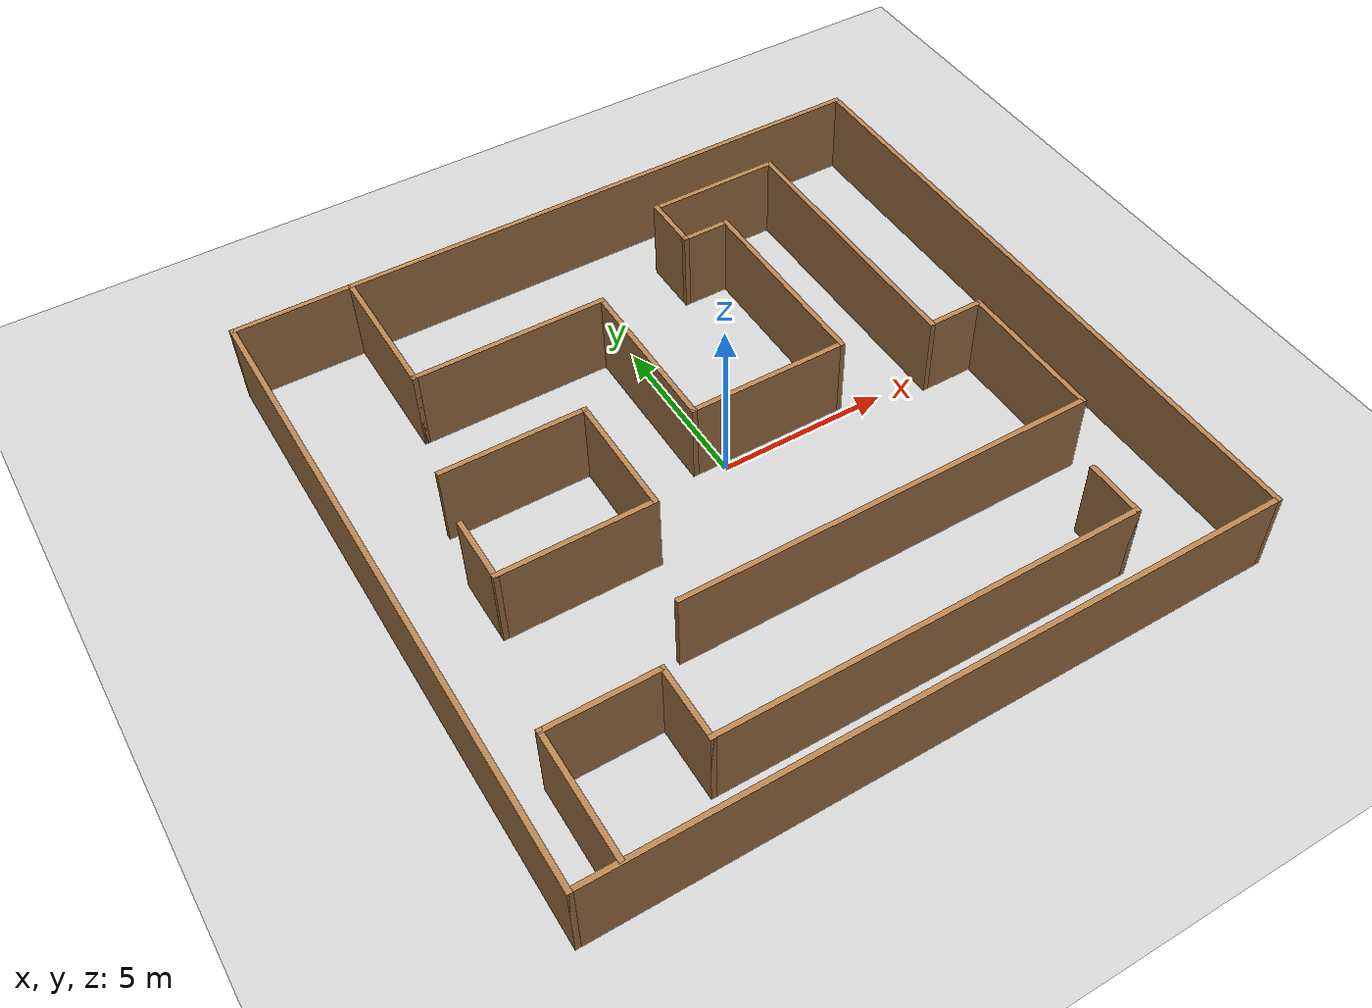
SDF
<?xml version="1.0" ?>
<sdf version="1.4">
  <!-- We use a custom world for the rrbot so that the camera angle is launched correctly -->

  <world name="default">
    <include>
	    <uri>/home/juan/watchdog_ws/src/simulation_watchdog/worlds/JD_World</uri>
    </include>

    <include>
      <uri>model://ground_plane</uri>
    </include>

    <!-- Global light source -->
    <include>
      <uri>model://sun</uri>
    </include>

    <!-- Focus camera on tall pendulum -->
    <gui fullscreen='0'>
      <camera name='user_camera'>
        <pose>4.927360 -4.376610 3.740080 0.000000 0.275643 2.356190</pose>
        <view_controller>orbit</view_controller>
      </camera>
    </gui>

  </world>
</sdf>

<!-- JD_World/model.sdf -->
<sdf version='1.6'>
  <model name='JD_World'>
    <pose frame=''>-0.011673 -0.268225 0 0 -0 0</pose>
    <link name='Wall_18'>
      <collision name='Wall_18_Collision'>
        <geometry>
          <box>
            <size>19.75 0.15 2.5</size>
          </box>
        </geometry>
        <pose frame=''>0 0 1.25 0 -0 0</pose>
      </collision>
      <visual name='Wall_18_Visual'>
        <pose frame=''>0 0 1.25 0 -0 0</pose>
        <geometry>
          <box>
            <size>19.75 0.15 2.5</size>
          </box>
        </geometry>
        <material>
          <script>
            <uri>file://media/materials/scripts/gazebo.material</uri>
            <name>Gazebo/Wood</name>
          </script>
          <ambient>1 1 1 1</ambient>
        </material>
        <meta>
          <layer>0</layer>
        </meta>
      </visual>
      <pose frame=''>0 9.55 0 0 -0 3.14159</pose>
    </link>
    <link name='Wall_19'>
      <collision name='Wall_19_Collision'>
        <geometry>
          <box>
            <size>19.25 0.15 2.5</size>
          </box>
        </geometry>
        <pose frame=''>0 0 1.25 0 -0 0</pose>
      </collision>
      <visual name='Wall_19_Visual'>
        <pose frame=''>0 0 1.25 0 -0 0</pose>
        <geometry>
          <box>
            <size>19.25 0.15 2.5</size>
          </box>
        </geometry>
        <material>
          <script>
            <uri>file://media/materials/scripts/gazebo.material</uri>
            <name>Gazebo/Wood</name>
          </script>
          <ambient>1 1 1 1</ambient>
        </material>
        <meta>
          <layer>0</layer>
        </meta>
      </visual>
      <pose frame=''>-9.8 -0 0 0 -0 -1.5708</pose>
    </link>
    <link name='Wall_20'>
      <collision name='Wall_20_Collision'>
        <geometry>
          <box>
            <size>19.75 0.15 2.5</size>
          </box>
        </geometry>
        <pose frame=''>0 0 1.25 0 -0 0</pose>
      </collision>
      <visual name='Wall_20_Visual'>
        <pose frame=''>0 0 1.25 0 -0 0</pose>
        <geometry>
          <box>
            <size>19.75 0.15 2.5</size>
          </box>
        </geometry>
        <material>
          <script>
            <uri>file://media/materials/scripts/gazebo.material</uri>
            <name>Gazebo/Wood</name>
          </script>
          <ambient>1 1 1 1</ambient>
        </material>
        <meta>
          <layer>0</layer>
        </meta>
      </visual>
      <pose frame=''>0 -9.55 0 0 -0 0</pose>
    </link>
    <link name='Wall_21'>
      <collision name='Wall_21_Collision'>
        <geometry>
          <box>
            <size>19.25 0.15 2.5</size>
          </box>
        </geometry>
        <pose frame=''>0 0 1.25 0 -0 0</pose>
      </collision>
      <visual name='Wall_21_Visual'>
        <pose frame=''>0 0 1.25 0 -0 0</pose>
        <geometry>
          <box>
            <size>19.25 0.15 2.5</size>
          </box>
        </geometry>
        <material>
          <script>
            <uri>file://media/materials/scripts/gazebo.material</uri>
            <name>Gazebo/Wood</name>
          </script>
          <ambient>1 1 1 1</ambient>
        </material>
        <meta>
          <layer>0</layer>
        </meta>
      </visual>
      <pose frame=''>9.8 -0 0 0 -0 1.5708</pose>
    </link>
    <link name='Wall_24'>
      <collision name='Wall_24_Collision'>
        <geometry>
          <box>
            <size>4.25 0.15 2.5</size>
          </box>
        </geometry>
        <pose frame=''>0 0 1.25 0 -0 0</pose>
      </collision>
      <visual name='Wall_24_Visual'>
        <pose frame=''>0 0 1.25 0 -0 0</pose>
        <geometry>
          <box>
            <size>4.25 0.15 2.5</size>
          </box>
        </geometry>
        <material>
          <script>
            <uri>file://media/materials/scripts/gazebo.material</uri>
            <name>Gazebo/Wood</name>
          </script>
          <ambient>1 1 1 1</ambient>
        </material>
        <meta>
          <layer>0</layer>
        </meta>
      </visual>
      <pose frame=''>-6.39008 7.44882 0 0 -0 -1.5708</pose>
    </link>
    <link name='Wall_25'>
      <collision name='Wall_25_Collision'>
        <geometry>
          <box>
            <size>5.75 0.15 2.5</size>
          </box>
        </geometry>
        <pose frame=''>0 0 1.25 0 -0 0</pose>
      </collision>
      <visual name='Wall_25_Visual'>
        <pose frame=''>0 0 1.25 0 -0 0</pose>
        <geometry>
          <box>
            <size>5.75 0.15 2.5</size>
          </box>
        </geometry>
        <material>
          <script>
            <uri>file://media/materials/scripts/gazebo.material</uri>
            <name>Gazebo/Wood</name>
          </script>
          <ambient>1 1 1 1</ambient>
        </material>
        <meta>
          <layer>0</layer>
        </meta>
      </visual>
      <pose frame=''>-3.59008 5.39882 0 0 -0 0</pose>
    </link>
    <link name='Wall_26'>
      <collision name='Wall_26_Collision'>
        <geometry>
          <box>
            <size>5 0.15 2.5</size>
          </box>
        </geometry>
        <pose frame=''>0 0 1.25 0 -0 0</pose>
      </collision>
      <visual name='Wall_26_Visual'>
        <pose frame=''>0 0 1.25 0 -0 0</pose>
        <geometry>
          <box>
            <size>5 0.15 2.5</size>
          </box>
        </geometry>
        <material>
          <script>
            <uri>file://media/materials/scripts/gazebo.material</uri>
            <name>Gazebo/Wood</name>
          </script>
          <ambient>1 1 1 1</ambient>
        </material>
        <meta>
          <layer>0</layer>
        </meta>
      </visual>
      <pose frame=''>-0.790077 2.97382 0 0 -0 -1.5708</pose>
    </link>
    <link name='Wall_27'>
      <collision name='Wall_27_Collision'>
        <geometry>
          <box>
            <size>4.75 0.15 2.5</size>
          </box>
        </geometry>
        <pose frame=''>0 0 1.25 0 -0 0</pose>
      </collision>
      <visual name='Wall_27_Visual'>
        <pose frame=''>0 0 1.25 0 -0 0</pose>
        <geometry>
          <box>
            <size>4.75 0.15 2.5</size>
          </box>
        </geometry>
        <material>
          <script>
            <uri>file://media/materials/scripts/gazebo.material</uri>
            <name>Gazebo/Wood</name>
          </script>
          <ambient>1 1 1 1</ambient>
        </material>
        <meta>
          <layer>0</layer>
        </meta>
      </visual>
      <pose frame=''>1.50992 0.548824 0 0 -0 0</pose>
    </link>
    <link name='Wall_28'>
      <collision name='Wall_28_Collision'>
        <geometry>
          <box>
            <size>6 0.15 2.5</size>
          </box>
        </geometry>
        <pose frame=''>0 0 1.25 0 -0 0</pose>
      </collision>
      <visual name='Wall_28_Visual'>
        <pose frame=''>0 0 1.25 0 -0 0</pose>
        <geometry>
          <box>
            <size>6 0.15 2.5</size>
          </box>
        </geometry>
        <material>
          <script>
            <uri>file://media/materials/scripts/gazebo.material</uri>
            <name>Gazebo/Wood</name>
          </script>
          <ambient>1 1 1 1</ambient>
        </material>
        <meta>
          <layer>0</layer>
        </meta>
      </visual>
      <pose frame=''>3.80992 3.47382 0 0 -0 1.5708</pose>
    </link>
    <link name='Wall_29'>
      <collision name='Wall_29_Collision'>
        <geometry>
          <box>
            <size>1.5 0.15 2.5</size>
          </box>
        </geometry>
        <pose frame=''>0 0 1.25 0 -0 0</pose>
      </collision>
      <visual name='Wall_29_Visual'>
        <pose frame=''>0 0 1.25 0 -0 0</pose>
        <geometry>
          <box>
            <size>1.5 0.15 2.5</size>
          </box>
        </geometry>
        <material>
          <script>
            <uri>file://media/materials/scripts/gazebo.material</uri>
            <name>Gazebo/Wood</name>
          </script>
          <ambient>1 1 1 1</ambient>
        </material>
        <meta>
          <layer>0</layer>
        </meta>
      </visual>
      <pose frame=''>3.13492 6.39882 0 0 -0 3.14159</pose>
    </link>
    <link name='Wall_30'>
      <collision name='Wall_30_Collision'>
        <geometry>
          <box>
            <size>1.75 0.15 2.5</size>
          </box>
        </geometry>
        <pose frame=''>0 0 1.25 0 -0 0</pose>
      </collision>
      <visual name='Wall_30_Visual'>
        <pose frame=''>0 0 1.25 0 -0 0</pose>
        <geometry>
          <box>
            <size>1.75 0.15 2.5</size>
          </box>
        </geometry>
        <material>
          <script>
            <uri>file://media/materials/scripts/gazebo.material</uri>
            <name>Gazebo/Wood</name>
          </script>
          <ambient>1 1 1 1</ambient>
        </material>
        <meta>
          <layer>0</layer>
        </meta>
      </visual>
      <pose frame=''>2.45992 7.19882 0 0 -0 1.5708</pose>
    </link>
    <link name='Wall_31'>
      <collision name='Wall_31_Collision'>
        <geometry>
          <box>
            <size>4 0.15 2.5</size>
          </box>
        </geometry>
        <pose frame=''>0 0 1.25 0 -0 0</pose>
      </collision>
      <visual name='Wall_31_Visual'>
        <pose frame=''>0 0 1.25 0 -0 0</pose>
        <geometry>
          <box>
            <size>4 0.15 2.5</size>
          </box>
        </geometry>
        <material>
          <script>
            <uri>file://media/materials/scripts/gazebo.material</uri>
            <name>Gazebo/Wood</name>
          </script>
          <ambient>1 1 1 1</ambient>
        </material>
        <meta>
          <layer>0</layer>
        </meta>
      </visual>
      <pose frame=''>4.38492 7.99882 0 0 -0 0</pose>
    </link>
    <link name='Wall_32'>
      <collision name='Wall_32_Collision'>
        <geometry>
          <box>
            <size>8.25 0.15 2.5</size>
          </box>
        </geometry>
        <pose frame=''>0 0 1.25 0 -0 0</pose>
      </collision>
      <visual name='Wall_32_Visual'>
        <pose frame=''>0 0 1.25 0 -0 0</pose>
        <geometry>
          <box>
            <size>8.25 0.15 2.5</size>
          </box>
        </geometry>
        <material>
          <script>
            <uri>file://media/materials/scripts/gazebo.material</uri>
            <name>Gazebo/Wood</name>
          </script>
          <ambient>1 1 1 1</ambient>
        </material>
        <meta>
          <layer>0</layer>
        </meta>
      </visual>
      <pose frame=''>6.30992 3.94882 0 0 -0 -1.5708</pose>
    </link>
    <link name='Wall_33'>
      <collision name='Wall_33_Collision'>
        <geometry>
          <box>
            <size>1.75 0.15 2.5</size>
          </box>
        </geometry>
        <pose frame=''>0 0 1.25 0 -0 0</pose>
      </collision>
      <visual name='Wall_33_Visual'>
        <pose frame=''>0 0 1.25 0 -0 0</pose>
        <geometry>
          <box>
            <size>1.75 0.15 2.5</size>
          </box>
        </geometry>
        <material>
          <script>
            <uri>file://media/materials/scripts/gazebo.material</uri>
            <name>Gazebo/Wood</name>
          </script>
          <ambient>1 1 1 1</ambient>
        </material>
        <meta>
          <layer>0</layer>
        </meta>
      </visual>
      <pose frame=''>7.10992 -0.101176 0 0 -0 0</pose>
    </link>
    <link name='Wall_35'>
      <collision name='Wall_35_Collision'>
        <geometry>
          <box>
            <size>4.5 0.15 2.5</size>
          </box>
        </geometry>
        <pose frame=''>0 0 1.25 0 -0 0</pose>
      </collision>
      <visual name='Wall_35_Visual'>
        <pose frame=''>0 0 1.25 0 -0 0</pose>
        <geometry>
          <box>
            <size>4.5 0.15 2.5</size>
          </box>
        </geometry>
        <material>
          <script>
            <uri>file://media/materials/scripts/gazebo.material</uri>
            <name>Gazebo/Wood</name>
          </script>
          <ambient>1 1 1 1</ambient>
        </material>
        <meta>
          <layer>0</layer>
        </meta>
      </visual>
      <pose frame=''>7.90992 -2.27618 0 0 -0 -1.5708</pose>
    </link>
    <link name='Wall_36'>
      <collision name='Wall_36_Collision'>
        <geometry>
          <box>
            <size>12.25 0.15 2.5</size>
          </box>
        </geometry>
        <pose frame=''>0 0 1.25 0 -0 0</pose>
      </collision>
      <visual name='Wall_36_Visual'>
        <pose frame=''>0 0 1.25 0 -0 0</pose>
        <geometry>
          <box>
            <size>12.25 0.15 2.5</size>
          </box>
        </geometry>
        <material>
          <script>
            <uri>file://media/materials/scripts/gazebo.material</uri>
            <name>Gazebo/Wood</name>
          </script>
          <ambient>1 1 1 1</ambient>
        </material>
        <meta>
          <layer>0</layer>
        </meta>
      </visual>
      <pose frame=''>1.85992 -4.45118 0 0 -0 3.14159</pose>
    </link>
    <link name='Wall_38'>
      <collision name='Wall_38_Collision'>
        <geometry>
          <box>
            <size>4.25 0.15 2.5</size>
          </box>
        </geometry>
        <pose frame=''>0 0 1.25 0 -0 0</pose>
      </collision>
      <visual name='Wall_38_Visual'>
        <pose frame=''>0 0 1.25 0 -0 0</pose>
        <geometry>
          <box>
            <size>4.25 0.15 2.5</size>
          </box>
        </geometry>
        <material>
          <script>
            <uri>file://media/materials/scripts/gazebo.material</uri>
            <name>Gazebo/Wood</name>
          </script>
          <ambient>1 1 1 1</ambient>
        </material>
        <meta>
          <layer>0</layer>
        </meta>
      </visual>
      <pose frame=''>-5.19655 2.03128 0 0 -0 0</pose>
    </link>
    <link name='Wall_39'>
      <collision name='Wall_39_Collision'>
        <geometry>
          <box>
            <size>3.75 0.15 2.5</size>
          </box>
        </geometry>
        <pose frame=''>0 0 1.25 0 -0 0</pose>
      </collision>
      <visual name='Wall_39_Visual'>
        <pose frame=''>0 0 1.25 0 -0 0</pose>
        <geometry>
          <box>
            <size>3.75 0.15 2.5</size>
          </box>
        </geometry>
        <material>
          <script>
            <uri>file://media/materials/scripts/gazebo.material</uri>
            <name>Gazebo/Wood</name>
          </script>
          <ambient>1 1 1 1</ambient>
        </material>
        <meta>
          <layer>0</layer>
        </meta>
      </visual>
      <pose frame=''>-3.14655 0.231277 0 0 -0 -1.5708</pose>
    </link>
    <link name='Wall_40'>
      <collision name='Wall_40_Collision'>
        <geometry>
          <box>
            <size>4.5 0.15 2.5</size>
          </box>
        </geometry>
        <pose frame=''>0 0 1.25 0 -0 0</pose>
      </collision>
      <visual name='Wall_40_Visual'>
        <pose frame=''>0 0 1.25 0 -0 0</pose>
        <geometry>
          <box>
            <size>4.5 0.15 2.5</size>
          </box>
        </geometry>
        <material>
          <script>
            <uri>file://media/materials/scripts/gazebo.material</uri>
            <name>Gazebo/Wood</name>
          </script>
          <ambient>1 1 1 1</ambient>
        </material>
        <meta>
          <layer>0</layer>
        </meta>
      </visual>
      <pose frame=''>-5.32155 -1.56872 0 0 -0 3.14159</pose>
    </link>
    <link name='Wall_41'>
      <collision name='Wall_41_Collision'>
        <geometry>
          <box>
            <size>2 0.15 2.5</size>
          </box>
        </geometry>
        <pose frame=''>0 0 1.25 0 -0 0</pose>
      </collision>
      <visual name='Wall_41_Visual'>
        <pose frame=''>0 0 1.25 0 -0 0</pose>
        <geometry>
          <box>
            <size>2 0.15 2.5</size>
          </box>
        </geometry>
        <material>
          <script>
            <uri>file://media/materials/scripts/gazebo.material</uri>
            <name>Gazebo/Wood</name>
          </script>
          <ambient>1 1 1 1</ambient>
        </material>
        <meta>
          <layer>0</layer>
        </meta>
      </visual>
      <pose frame=''>-7.49655 -0.643723 0 0 -0 1.5708</pose>
    </link>
    <link name='Wall_43'>
      <collision name='Wall_43_Collision'>
        <geometry>
          <box>
            <size>3.75 0.15 2.5</size>
          </box>
        </geometry>
        <pose frame=''>0 0 1.25 0 -0 0</pose>
      </collision>
      <visual name='Wall_43_Visual'>
        <pose frame=''>0 0 1.25 0 -0 0</pose>
        <geometry>
          <box>
            <size>3.75 0.15 2.5</size>
          </box>
        </geometry>
        <material>
          <script>
            <uri>file://media/materials/scripts/gazebo.material</uri>
            <name>Gazebo/Wood</name>
          </script>
          <ambient>1 1 1 1</ambient>
        </material>
        <meta>
          <layer>0</layer>
        </meta>
      </visual>
      <pose frame=''>-8.55915 -7.69495 0 0 -0 1.5708</pose>
    </link>
    <link name='Wall_44'>
      <collision name='Wall_44_Collision'>
        <geometry>
          <box>
            <size>3.25 0.15 2.5</size>
          </box>
        </geometry>
        <pose frame=''>0 0 1.25 0 -0 0</pose>
      </collision>
      <visual name='Wall_44_Visual'>
        <pose frame=''>0 0 1.25 0 -0 0</pose>
        <geometry>
          <box>
            <size>3.25 0.15 2.5</size>
          </box>
        </geometry>
        <material>
          <script>
            <uri>file://media/materials/scripts/gazebo.material</uri>
            <name>Gazebo/Wood</name>
          </script>
          <ambient>1 1 1 1</ambient>
        </material>
        <meta>
          <layer>0</layer>
        </meta>
      </visual>
      <pose frame=''>-7.00915 -5.89495 0 0 -0 0</pose>
    </link>
    <link name='Wall_45'>
      <collision name='Wall_45_Collision'>
        <geometry>
          <box>
            <size>2.25 0.15 2.5</size>
          </box>
        </geometry>
        <pose frame=''>0 0 1.25 0 -0 0</pose>
      </collision>
      <visual name='Wall_45_Visual'>
        <pose frame=''>0 0 1.25 0 -0 0</pose>
        <geometry>
          <box>
            <size>2.25 0.15 2.5</size>
          </box>
        </geometry>
        <material>
          <script>
            <uri>file://media/materials/scripts/gazebo.material</uri>
            <name>Gazebo/Wood</name>
          </script>
          <ambient>1 1 1 1</ambient>
        </material>
        <meta>
          <layer>0</layer>
        </meta>
      </visual>
      <pose frame=''>-5.45915 -6.94495 0 0 -0 -1.5708</pose>
    </link>
    <link name='Wall_46'>
      <collision name='Wall_46_Collision'>
        <geometry>
          <box>
            <size>12.25 0.15 2.5</size>
          </box>
        </geometry>
        <pose frame=''>0 0 1.25 0 -0 0</pose>
      </collision>
      <visual name='Wall_46_Visual'>
        <pose frame=''>0 0 1.25 0 -0 0</pose>
        <geometry>
          <box>
            <size>12.25 0.15 2.5</size>
          </box>
        </geometry>
        <material>
          <script>
            <uri>file://media/materials/scripts/gazebo.material</uri>
            <name>Gazebo/Wood</name>
          </script>
          <ambient>1 1 1 1</ambient>
        </material>
        <meta>
          <layer>0</layer>
        </meta>
      </visual>
      <pose frame=''>0.590852 -7.99495 0 0 -0 0</pose>
    </link>
    <link name='Wall_47'>
      <collision name='Wall_47_Collision'>
        <geometry>
          <box>
            <size>1.75 0.15 2.5</size>
          </box>
        </geometry>
        <pose frame=''>0 0 1.25 0 -0 0</pose>
      </collision>
      <visual name='Wall_47_Visual'>
        <pose frame=''>0 0 1.25 0 -0 0</pose>
        <geometry>
          <box>
            <size>1.75 0.15 2.5</size>
          </box>
        </geometry>
        <material>
          <script>
            <uri>file://media/materials/scripts/gazebo.material</uri>
            <name>Gazebo/Wood</name>
          </script>
          <ambient>1 1 1 1</ambient>
        </material>
        <meta>
          <layer>0</layer>
        </meta>
      </visual>
      <pose frame=''>6.64085 -7.19495 0 0 -0 1.5708</pose>
    </link>
    <static>1</static>
  </model>
</sdf>
